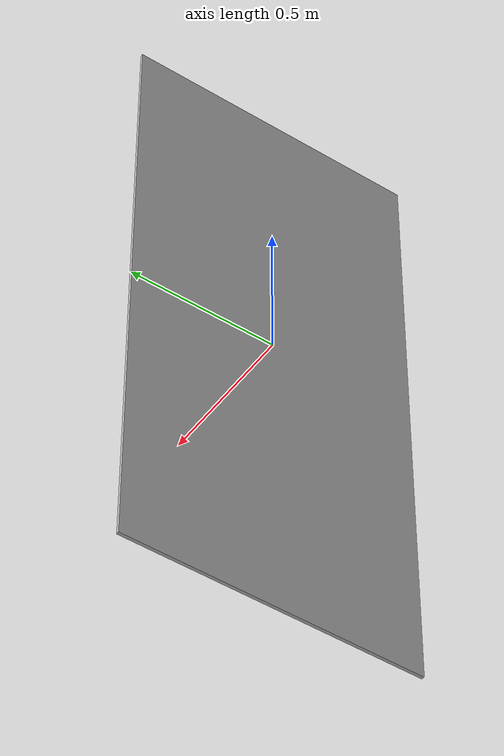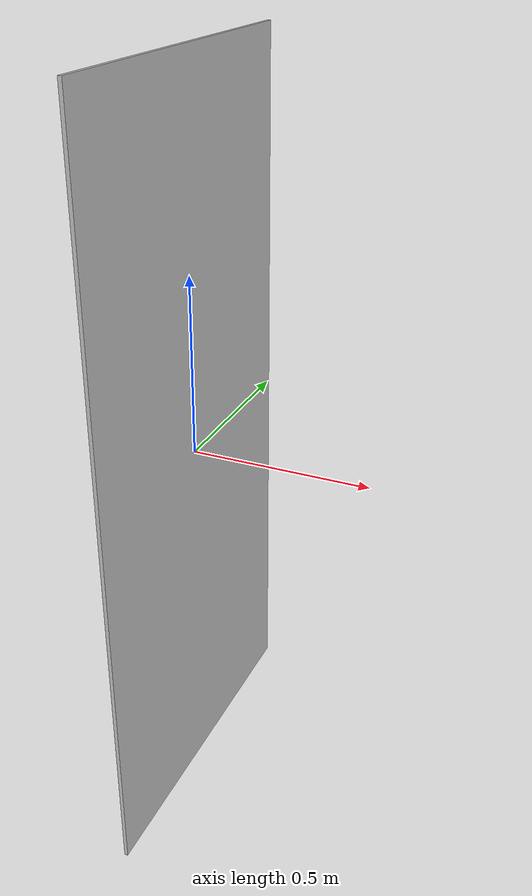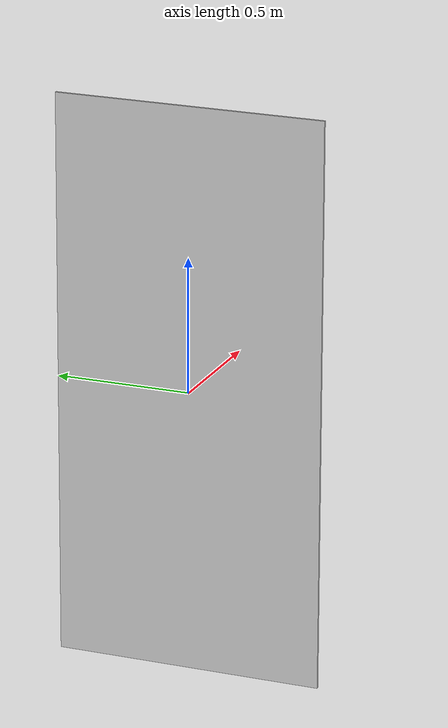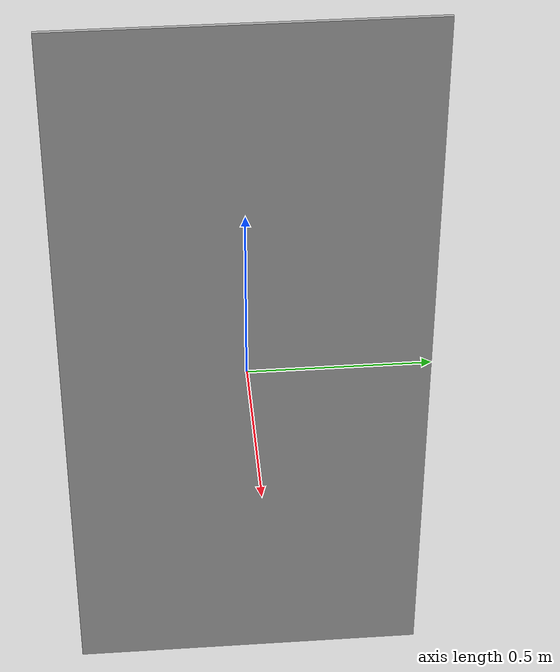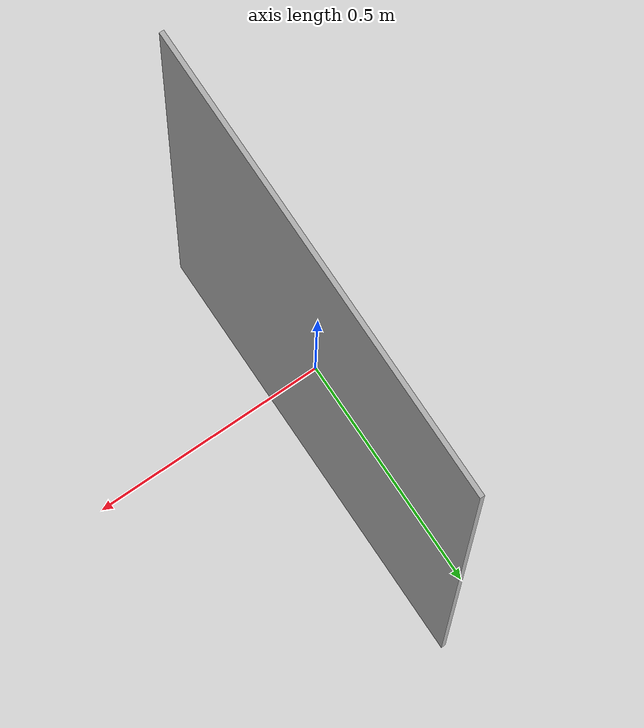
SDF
<?xml version="1.0" ?>
<sdf version="1.6">
  <model name="digital_img">
    <link name="link">
      <collision name="collision">
        <geometry>
          <box>
            <size>0.01 1.0 2.1</size>
          </box>
        </geometry>
      </collision>
      <visual name="visual">
        <geometry>
          <box>
            <size>0.01 1.0 2.1</size>
          </box>
        </geometry>
        <material>
          <script>
            <uri>model://digital_img/materials/scripts</uri>
            <uri>model://digital_img/materials/textures</uri>
            <name>vrc/digital_img</name>
          </script>
        </material>
      </visual>
    </link>

  </model>
</sdf>
